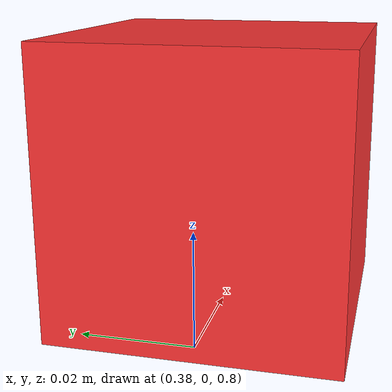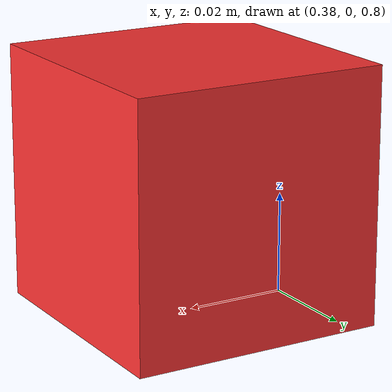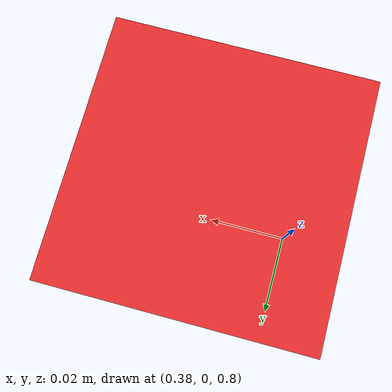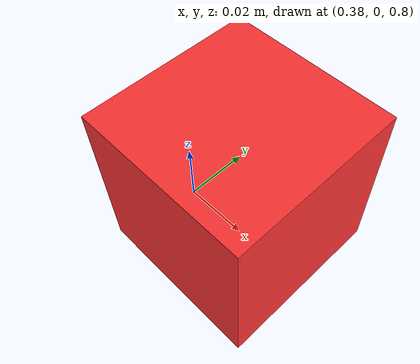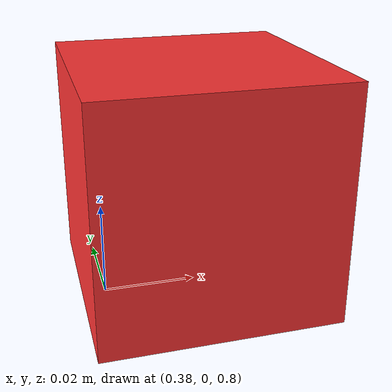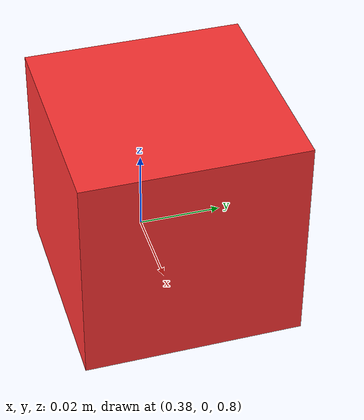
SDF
<?xml version="1.0"?>
<sdf version="1.8">
  <!-- ============================================================
       TARGET OBJECT: Red box (pick target)
  ============================================================ -->
  <model name="pick_object">
    <pose>0.4 0.0 0.825 0 0 0</pose>
    <link name="box_link">
      <inertial>
        <mass>0.1</mass>
        <inertia><ixx>0.0001</ixx><ixy>0</ixy><ixz>0</ixz>
                 <iyy>0.0001</iyy><iyz>0</iyz><izz>0.0001</izz></inertia>
      </inertial>
      <visual name="box_visual">
        <geometry><box><size>0.05 0.05 0.05</size></box></geometry>
        <material>
          <ambient>0.8 0.1 0.1 1</ambient>
          <diffuse>1.0 0.2 0.2 1</diffuse>
          <specular>0.5 0.1 0.1 1</specular>
        </material>
      </visual>
      <collision name="box_collision">
        <geometry><box><size>0.06 0.06 0.06</size></box></geometry>
        <surface>
          <friction>
            <ode><mu>10000</mu><mu2>10000</mu2></ode>
            <torsional>
                <coefficient>10.0</coefficient>
                <use_patch_radius>true</use_patch_radius>
                <patch_radius>0.05</patch_radius>
              </torsional>
          </friction>
          <contact>
            <ode>
              <kp>1e2</kp>         <!-- 接觸硬度 (Stiffness) -->
              <kd>10.0</kd>         <!-- 接觸阻尼 (Damping) -->
              <min_depth>0.005</min_depth> <!-- 允許微小嵌入以增加抓力 -->
              <max_vel>0.1</max_vel>
            </ode>
          </contact>
        </surface>
      </collision>
    </link>
  </model>
</sdf>
